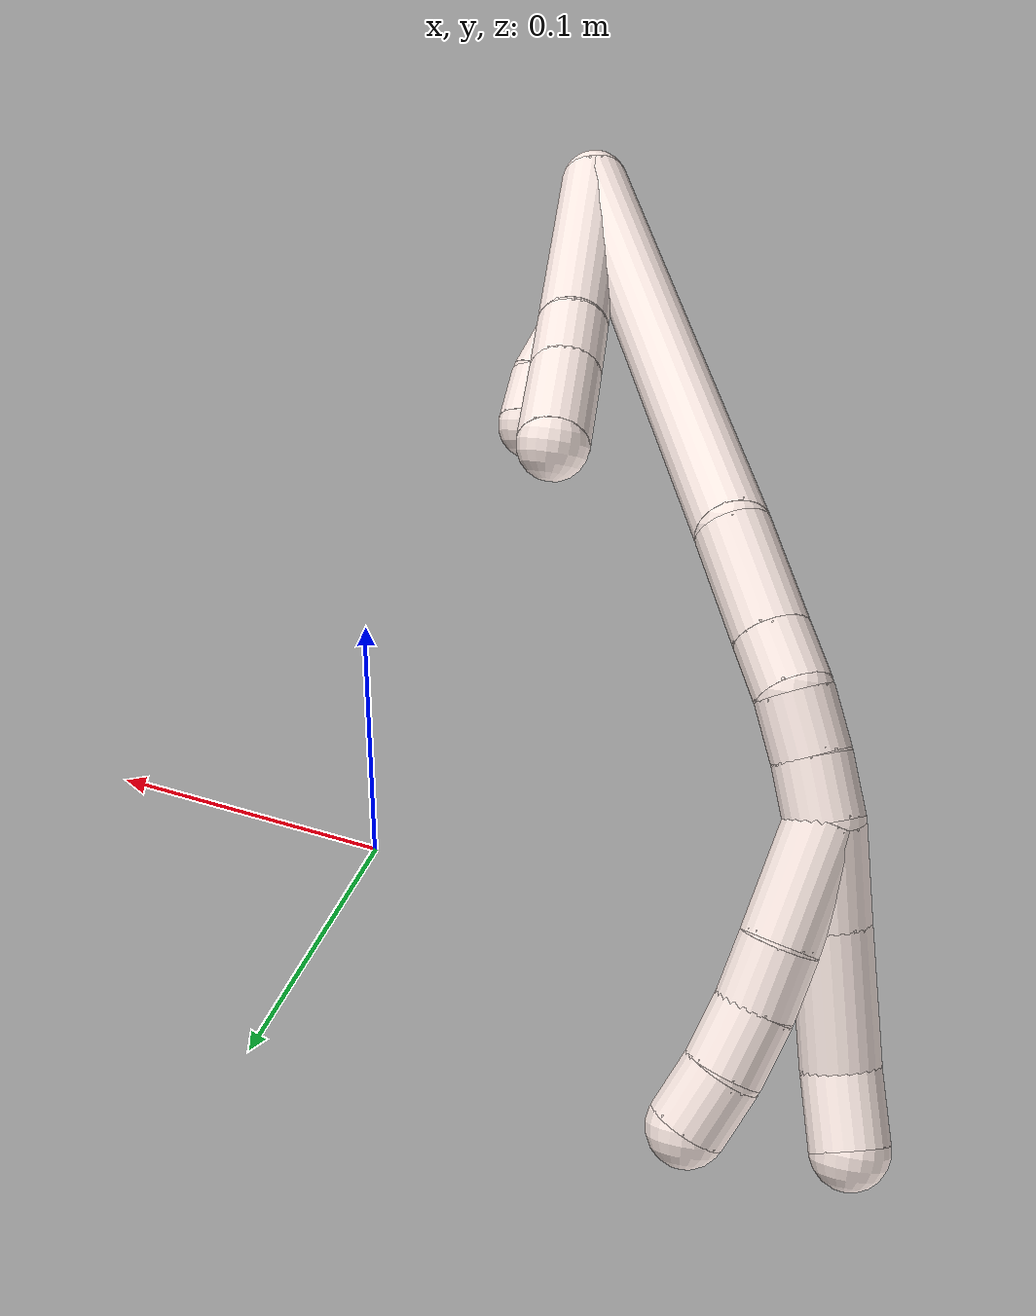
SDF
<sdf version="1.7">
 <world name="default">
  <model name="11">
   <static>0</static>
   <link name="11">
    <collision name="collision-cylinder-e_1_2_8">
     <pose>0.005255 0.030404 -0.032232 -2.38536 0.118054 -0.295372</pose>
     <geometry><cylinder><radius>0.0125</radius><length>0.08924</length></cylinder></geometry>
     <surface>
      <friction><ode><mu>1.16</mu><mu2>1.16</mu2><slip1>0</slip1><slip2>0</slip2></ode></friction>
      <contact><ode><kp>1e+06</kp><kd>1</kd><max_vel>0</max_vel><min_depth>0.001</min_depth></ode></contact>
     </surface>
    </collision>
    <visual name="visual-cylinder-e_1_2_8">
     <pose>0.005255 0.030404 -0.032232 -2.38536 0.118054 -0.295372</pose>
     <geometry><cylinder><radius>0.0125</radius><length>0.08924</length></cylinder></geometry>
     <material><ambient>1 0.933333 0.909804 1</ambient></material>
    </visual>
    <collision name="collision-cylinder-e_2_8_9">
     <pose>0.011855 0.068455 -0.074025 -2.46702 0.109336 -0.309591</pose>
     <geometry><cylinder><radius>0.0125</radius><length>0.024632</length></cylinder></geometry>
     <surface>
      <friction><ode><mu>1.16</mu><mu2>1.16</mu2><slip1>0</slip1><slip2>0</slip2></ode></friction>
      <contact><ode><kp>1e+06</kp><kd>1</kd><max_vel>0</max_vel><min_depth>0.001</min_depth></ode></contact>
     </surface>
    </collision>
    <visual name="visual-cylinder-e_2_8_9">
     <pose>0.011855 0.068455 -0.074025 -2.46702 0.109336 -0.309591</pose>
     <geometry><cylinder><radius>0.0125</radius><length>0.024632</length></cylinder></geometry>
     <material><ambient>1 0.933333 0.909804 1</ambient></material>
    </visual>
    <collision name="collision-cylinder-e_3_9_6">
     <pose>0.015394 0.087727 -0.097237 -2.43616 0.12183 -0.328386</pose>
     <geometry><cylinder><radius>0.0125</radius><length>0.036128</length></cylinder></geometry>
     <surface>
      <friction><ode><mu>1.16</mu><mu2>1.16</mu2><slip1>0</slip1><slip2>0</slip2></ode></friction>
      <contact><ode><kp>1e+06</kp><kd>1</kd><max_vel>0</max_vel><min_depth>0.001</min_depth></ode></contact>
     </surface>
    </collision>
    <visual name="visual-cylinder-e_3_9_6">
     <pose>0.015394 0.087727 -0.097237 -2.43616 0.12183 -0.328386</pose>
     <geometry><cylinder><radius>0.0125</radius><length>0.036128</length></cylinder></geometry>
     <material><ambient>1 0.933333 0.909804 1</ambient></material>
    </visual>
    <collision name="collision-cylinder-e_1_2_10">
     <pose>-0.000365 0.000682 -0.00997 -3.07332 -0.036523 0.982193</pose>
     <geometry><cylinder><radius>0.0125</radius><length>0.02</length></cylinder></geometry>
     <surface>
      <friction><ode><mu>1.16</mu><mu2>1.16</mu2><slip1>0</slip1><slip2>0</slip2></ode></friction>
      <contact><ode><kp>1e+06</kp><kd>1</kd><max_vel>0</max_vel><min_depth>0.001</min_depth></ode></contact>
     </surface>
    </collision>
    <visual name="visual-cylinder-e_1_2_10">
     <pose>-0.000365 0.000682 -0.00997 -3.07332 -0.036523 0.982193</pose>
     <geometry><cylinder><radius>0.0125</radius><length>0.02</length></cylinder></geometry>
     <material><ambient>1 0.933333 0.909804 1</ambient></material>
    </visual>
    <collision name="collision-cylinder-e_2_10_11">
     <pose>-7e-06 0.000766 -0.029896 3.08161 0.072433 1.75837</pose>
     <geometry><cylinder><radius>0.0125</radius><length>0.02</length></cylinder></geometry>
     <surface>
      <friction><ode><mu>1.16</mu><mu2>1.16</mu2><slip1>0</slip1><slip2>0</slip2></ode></friction>
      <contact><ode><kp>1e+06</kp><kd>1</kd><max_vel>0</max_vel><min_depth>0.001</min_depth></ode></contact>
     </surface>
    </collision>
    <visual name="visual-cylinder-e_2_10_11">
     <pose>-7e-06 0.000766 -0.029896 3.08161 0.072433 1.75837</pose>
     <geometry><cylinder><radius>0.0125</radius><length>0.02</length></cylinder></geometry>
     <material><ambient>1 0.933333 0.909804 1</ambient></material>
    </visual>
    <collision name="collision-cylinder-e_3_11_12">
     <pose>0.001305 0.002179 -0.04963 -2.93877 0.05887 -0.563289</pose>
     <geometry><cylinder><radius>0.0125</radius><length>0.02</length></cylinder></geometry>
     <surface>
      <friction><ode><mu>1.16</mu><mu2>1.16</mu2><slip1>0</slip1><slip2>0</slip2></ode></friction>
      <contact><ode><kp>1e+06</kp><kd>1</kd><max_vel>0</max_vel><min_depth>0.001</min_depth></ode></contact>
     </surface>
    </collision>
    <visual name="visual-cylinder-e_3_11_12">
     <pose>0.001305 0.002179 -0.04963 -2.93877 0.05887 -0.563289</pose>
     <geometry><cylinder><radius>0.0125</radius><length>0.02</length></cylinder></geometry>
     <material><ambient>1 0.933333 0.909804 1</ambient></material>
    </visual>
    <collision name="collision-cylinder-e_4_12_13">
     <pose>0.00563 0.005742 -0.068553 -2.97344 0.382929 -2.32136</pose>
     <geometry><cylinder><radius>0.0125</radius><length>0.02</length></cylinder></geometry>
     <surface>
      <friction><ode><mu>1.16</mu><mu2>1.16</mu2><slip1>0</slip1><slip2>0</slip2></ode></friction>
      <contact><ode><kp>1e+06</kp><kd>1</kd><max_vel>0</max_vel><min_depth>0.001</min_depth></ode></contact>
     </surface>
    </collision>
    <visual name="visual-cylinder-e_4_12_13">
     <pose>0.00563 0.005742 -0.068553 -2.97344 0.382929 -2.32136</pose>
     <geometry><cylinder><radius>0.0125</radius><length>0.02</length></cylinder></geometry>
     <material><ambient>1 0.933333 0.909804 1</ambient></material>
    </visual>
    <collision name="collision-cylinder-e_5_13_5">
     <pose>0.010905 0.010542 -0.08703 -2.80673 0.154406 -0.858455</pose>
     <geometry><cylinder><radius>0.0125</radius><length>0.02</length></cylinder></geometry>
     <surface>
      <friction><ode><mu>1.16</mu><mu2>1.16</mu2><slip1>0</slip1><slip2>0</slip2></ode></friction>
      <contact><ode><kp>1e+06</kp><kd>1</kd><max_vel>0</max_vel><min_depth>0.001</min_depth></ode></contact>
     </surface>
    </collision>
    <visual name="visual-cylinder-e_5_13_5">
     <pose>0.010905 0.010542 -0.08703 -2.80673 0.154406 -0.858455</pose>
     <geometry><cylinder><radius>0.0125</radius><length>0.02</length></cylinder></geometry>
     <material><ambient>1 0.933333 0.909804 1</ambient></material>
    </visual>
    <collision name="collision-cylinder-e_1_2_14">
     <pose>-0.017585 0.07322 -0.066636 -2.30915 -0.175785 0.393532</pose>
     <geometry><cylinder><radius>0.0125</radius><length>0.201105</length></cylinder></geometry>
     <surface>
      <friction><ode><mu>1.16</mu><mu2>1.16</mu2><slip1>0</slip1><slip2>0</slip2></ode></friction>
      <contact><ode><kp>1e+06</kp><kd>1</kd><max_vel>0</max_vel><min_depth>0.001</min_depth></ode></contact>
     </surface>
    </collision>
    <visual name="visual-cylinder-e_1_2_14">
     <pose>-0.017585 0.07322 -0.066636 -2.30915 -0.175785 0.393532</pose>
     <geometry><cylinder><radius>0.0125</radius><length>0.201105</length></cylinder></geometry>
     <material><ambient>1 0.933333 0.909804 1</ambient></material>
    </visual>
    <collision name="collision-cylinder-e_2_14_15">
     <pose>-0.041223 0.155933 -0.14899 -2.59827 -0.31845 1.04592</pose>
     <geometry><cylinder><radius>0.0125</radius><length>0.038667</length></cylinder></geometry>
     <surface>
      <friction><ode><mu>1.16</mu><mu2>1.16</mu2><slip1>0</slip1><slip2>0</slip2></ode></friction>
      <contact><ode><kp>1e+06</kp><kd>1</kd><max_vel>0</max_vel><min_depth>0.001</min_depth></ode></contact>
     </surface>
    </collision>
    <visual name="visual-cylinder-e_2_14_15">
     <pose>-0.041223 0.155933 -0.14899 -2.59827 -0.31845 1.04592</pose>
     <geometry><cylinder><radius>0.0125</radius><length>0.038667</length></cylinder></geometry>
     <material><ambient>1 0.933333 0.909804 1</ambient></material>
    </visual>
    <collision name="collision-cylinder-e_3_15_16">
     <pose>-0.050516 0.170321 -0.172859 -2.60083 -0.328392 1.07759</pose>
     <geometry><cylinder><radius>0.0125</radius><length>0.020092</length></cylinder></geometry>
     <surface>
      <friction><ode><mu>1.16</mu><mu2>1.16</mu2><slip1>0</slip1><slip2>0</slip2></ode></friction>
      <contact><ode><kp>1e+06</kp><kd>1</kd><max_vel>0</max_vel><min_depth>0.001</min_depth></ode></contact>
     </surface>
    </collision>
    <visual name="visual-cylinder-e_3_15_16">
     <pose>-0.050516 0.170321 -0.172859 -2.60083 -0.328392 1.07759</pose>
     <geometry><cylinder><radius>0.0125</radius><length>0.020092</length></cylinder></geometry>
     <material><ambient>1 0.933333 0.909804 1</ambient></material>
    </visual>
    <collision name="collision-cylinder-e_4_16_17">
     <pose>-0.057408 0.176872 -0.190201 -2.96331 -0.372846 2.25655</pose>
     <geometry><cylinder><radius>0.0125</radius><length>0.020053</length></cylinder></geometry>
     <surface>
      <friction><ode><mu>1.16</mu><mu2>1.16</mu2><slip1>0</slip1><slip2>0</slip2></ode></friction>
      <contact><ode><kp>1e+06</kp><kd>1</kd><max_vel>0</max_vel><min_depth>0.001</min_depth></ode></contact>
     </surface>
    </collision>
    <visual name="visual-cylinder-e_4_16_17">
     <pose>-0.057408 0.176872 -0.190201 -2.96331 -0.372846 2.25655</pose>
     <geometry><cylinder><radius>0.0125</radius><length>0.020053</length></cylinder></geometry>
     <material><ambient>1 0.933333 0.909804 1</ambient></material>
    </visual>
    <collision name="collision-cylinder-e_5_17_1">
     <pose>-0.064125 0.179956 -0.208846 -2.99162 -0.310117 2.24552</pose>
     <geometry><cylinder><radius>0.0125</radius><length>0.020084</length></cylinder></geometry>
     <surface>
      <friction><ode><mu>1.16</mu><mu2>1.16</mu2><slip1>0</slip1><slip2>0</slip2></ode></friction>
      <contact><ode><kp>1e+06</kp><kd>1</kd><max_vel>0</max_vel><min_depth>0.001</min_depth></ode></contact>
     </surface>
    </collision>
    <visual name="visual-cylinder-e_5_17_1">
     <pose>-0.064125 0.179956 -0.208846 -2.99162 -0.310117 2.24552</pose>
     <geometry><cylinder><radius>0.0125</radius><length>0.020084</length></cylinder></geometry>
     <material><ambient>1 0.933333 0.909804 1</ambient></material>
    </visual>
    <collision name="collision-cylinder-e_1_1_18">
     <pose>-0.070959 0.179462 -0.233244 3.01356 -0.245176 -2.18211</pose>
     <geometry><cylinder><radius>0.0125</radius><length>0.031061</length></cylinder></geometry>
     <surface>
      <friction><ode><mu>1.16</mu><mu2>1.16</mu2><slip1>0</slip1><slip2>0</slip2></ode></friction>
      <contact><ode><kp>1e+06</kp><kd>1</kd><max_vel>0</max_vel><min_depth>0.001</min_depth></ode></contact>
     </surface>
    </collision>
    <visual name="visual-cylinder-e_1_1_18">
     <pose>-0.070959 0.179462 -0.233244 3.01356 -0.245176 -2.18211</pose>
     <geometry><cylinder><radius>0.0125</radius><length>0.031061</length></cylinder></geometry>
     <material><ambient>1 0.933333 0.909804 1</ambient></material>
    </visual>
    <collision name="collision-cylinder-e_2_18_19">
     <pose>-0.080187 0.175511 -0.269816 3.04814 -0.246175 -2.41882</pose>
     <geometry><cylinder><radius>0.0125</radius><length>0.044799</length></cylinder></geometry>
     <surface>
      <friction><ode><mu>1.16</mu><mu2>1.16</mu2><slip1>0</slip1><slip2>0</slip2></ode></friction>
      <contact><ode><kp>1e+06</kp><kd>1</kd><max_vel>0</max_vel><min_depth>0.001</min_depth></ode></contact>
     </surface>
    </collision>
    <visual name="visual-cylinder-e_2_18_19">
     <pose>-0.080187 0.175511 -0.269816 3.04814 -0.246175 -2.41882</pose>
     <geometry><cylinder><radius>0.0125</radius><length>0.044799</length></cylinder></geometry>
     <material><ambient>1 0.933333 0.909804 1</ambient></material>
    </visual>
    <collision name="collision-cylinder-e_3_19_4">
     <pose>-0.087931 0.176235 -0.302974 -2.90731 -0.190422 1.36343</pose>
     <geometry><cylinder><radius>0.0125</radius><length>0.02414</length></cylinder></geometry>
     <surface>
      <friction><ode><mu>1.16</mu><mu2>1.16</mu2><slip1>0</slip1><slip2>0</slip2></ode></friction>
      <contact><ode><kp>1e+06</kp><kd>1</kd><max_vel>0</max_vel><min_depth>0.001</min_depth></ode></contact>
     </surface>
    </collision>
    <visual name="visual-cylinder-e_3_19_4">
     <pose>-0.087931 0.176235 -0.302974 -2.90731 -0.190422 1.36343</pose>
     <geometry><cylinder><radius>0.0125</radius><length>0.02414</length></cylinder></geometry>
     <material><ambient>1 0.933333 0.909804 1</ambient></material>
    </visual>
    <collision name="collision-cylinder-e_1_1_20">
     <pose>-0.062728 0.181933 -0.236928 -3.11217 0.234979 -2.89353</pose>
     <geometry><cylinder><radius>0.0125</radius><length>0.038322</length></cylinder></geometry>
     <surface>
      <friction><ode><mu>1.16</mu><mu2>1.16</mu2><slip1>0</slip1><slip2>0</slip2></ode></friction>
      <contact><ode><kp>1e+06</kp><kd>1</kd><max_vel>0</max_vel><min_depth>0.001</min_depth></ode></contact>
     </surface>
    </collision>
    <visual name="visual-cylinder-e_1_1_20">
     <pose>-0.062728 0.181933 -0.236928 -3.11217 0.234979 -2.89353</pose>
     <geometry><cylinder><radius>0.0125</radius><length>0.038322</length></cylinder></geometry>
     <material><ambient>1 0.933333 0.909804 1</ambient></material>
    </visual>
    <collision name="collision-cylinder-e_2_20_21">
     <pose>-0.056075 0.181763 -0.2656 3.07019 0.214314 2.50041</pose>
     <geometry><cylinder><radius>0.0125</radius><length>0.020615</length></cylinder></geometry>
     <surface>
      <friction><ode><mu>1.16</mu><mu2>1.16</mu2><slip1>0</slip1><slip2>0</slip2></ode></friction>
      <contact><ode><kp>1e+06</kp><kd>1</kd><max_vel>0</max_vel><min_depth>0.001</min_depth></ode></contact>
     </surface>
    </collision>
    <visual name="visual-cylinder-e_2_20_21">
     <pose>-0.056075 0.181763 -0.2656 3.07019 0.214314 2.50041</pose>
     <geometry><cylinder><radius>0.0125</radius><length>0.020615</length></cylinder></geometry>
     <material><ambient>1 0.933333 0.909804 1</ambient></material>
    </visual>
    <collision name="collision-cylinder-e_3_21_22">
     <pose>-0.050616 0.18053 -0.285637 3.09009 0.315611 2.82067</pose>
     <geometry><cylinder><radius>0.0125</radius><length>0.021047</length></cylinder></geometry>
     <surface>
      <friction><ode><mu>1.16</mu><mu2>1.16</mu2><slip1>0</slip1><slip2>0</slip2></ode></friction>
      <contact><ode><kp>1e+06</kp><kd>1</kd><max_vel>0</max_vel><min_depth>0.001</min_depth></ode></contact>
     </surface>
    </collision>
    <visual name="visual-cylinder-e_3_21_22">
     <pose>-0.050616 0.18053 -0.285637 3.09009 0.315611 2.82067</pose>
     <geometry><cylinder><radius>0.0125</radius><length>0.021047</length></cylinder></geometry>
     <material><ambient>1 0.933333 0.909804 1</ambient></material>
    </visual>
    <collision name="collision-cylinder-e_4_22_3">
     <pose>-0.043591 0.178255 -0.304734 2.95073 0.385084 2.22875</pose>
     <geometry><cylinder><radius>0.0125</radius><length>0.020016</length></cylinder></geometry>
     <surface>
      <friction><ode><mu>1.16</mu><mu2>1.16</mu2><slip1>0</slip1><slip2>0</slip2></ode></friction>
      <contact><ode><kp>1e+06</kp><kd>1</kd><max_vel>0</max_vel><min_depth>0.001</min_depth></ode></contact>
     </surface>
    </collision>
    <visual name="visual-cylinder-e_4_22_3">
     <pose>-0.043591 0.178255 -0.304734 2.95073 0.385084 2.22875</pose>
     <geometry><cylinder><radius>0.0125</radius><length>0.020016</length></cylinder></geometry>
     <material><ambient>1 0.933333 0.909804 1</ambient></material>
    </visual>
    <collision name="collision-sphere-3">
     <pose>-0.039831 0.176496 -0.31384 0 -0 0</pose>
     <geometry><sphere><radius>0.0125</radius></sphere></geometry>
     <surface>
      <friction><ode><mu>1.16</mu><mu2>1.16</mu2><slip1>0</slip1><slip2>0</slip2></ode></friction>
      <contact><ode><kp>1e+06</kp><kd>1</kd><max_vel>0</max_vel><min_depth>0.001</min_depth></ode></contact>
     </surface>
    </collision>
    <visual name="visual-sphere-3">
     <pose>-0.039831 0.176496 -0.31384 0 -0 0</pose>
     <geometry><sphere><radius>0.0125</radius></sphere></geometry>
     <material><ambient>1 0.933333 0.909804 1</ambient></material>
    </visual>
    <collision name="collision-sphere-22">
     <pose>-0.04735 0.180015 -0.295627 0 -0 0</pose>
     <geometry><sphere><radius>0.0125</radius></sphere></geometry>
     <surface>
      <friction><ode><mu>1.16</mu><mu2>1.16</mu2><slip1>0</slip1><slip2>0</slip2></ode></friction>
      <contact><ode><kp>1e+06</kp><kd>1</kd><max_vel>0</max_vel><min_depth>0.001</min_depth></ode></contact>
     </surface>
    </collision>
    <visual name="visual-sphere-22">
     <pose>-0.04735 0.180015 -0.295627 0 -0 0</pose>
     <geometry><sphere><radius>0.0125</radius></sphere></geometry>
     <material><ambient>1 0.933333 0.909804 1</ambient></material>
    </visual>
    <collision name="collision-sphere-21">
     <pose>-0.053883 0.181045 -0.275646 0 -0 0</pose>
     <geometry><sphere><radius>0.0125</radius></sphere></geometry>
     <surface>
      <friction><ode><mu>1.16</mu><mu2>1.16</mu2><slip1>0</slip1><slip2>0</slip2></ode></friction>
      <contact><ode><kp>1e+06</kp><kd>1</kd><max_vel>0</max_vel><min_depth>0.001</min_depth></ode></contact>
     </surface>
    </collision>
    <visual name="visual-sphere-21">
     <pose>-0.053883 0.181045 -0.275646 0 -0 0</pose>
     <geometry><sphere><radius>0.0125</radius></sphere></geometry>
     <material><ambient>1 0.933333 0.909804 1</ambient></material>
    </visual>
    <collision name="collision-sphere-20">
     <pose>-0.058267 0.182482 -0.255554 0 -0 0</pose>
     <geometry><sphere><radius>0.0125</radius></sphere></geometry>
     <surface>
      <friction><ode><mu>1.16</mu><mu2>1.16</mu2><slip1>0</slip1><slip2>0</slip2></ode></friction>
      <contact><ode><kp>1e+06</kp><kd>1</kd><max_vel>0</max_vel><min_depth>0.001</min_depth></ode></contact>
     </surface>
    </collision>
    <visual name="visual-sphere-20">
     <pose>-0.058267 0.182482 -0.255554 0 -0 0</pose>
     <geometry><sphere><radius>0.0125</radius></sphere></geometry>
     <material><ambient>1 0.933333 0.909804 1</ambient></material>
    </visual>
    <collision name="collision-sphere-4">
     <pose>-0.090215 0.178986 -0.314502 0 -0 0</pose>
     <geometry><sphere><radius>0.0125</radius></sphere></geometry>
     <surface>
      <friction><ode><mu>1.16</mu><mu2>1.16</mu2><slip1>0</slip1><slip2>0</slip2></ode></friction>
      <contact><ode><kp>1e+06</kp><kd>1</kd><max_vel>0</max_vel><min_depth>0.001</min_depth></ode></contact>
     </surface>
    </collision>
    <visual name="visual-sphere-4">
     <pose>-0.090215 0.178986 -0.314502 0 -0 0</pose>
     <geometry><sphere><radius>0.0125</radius></sphere></geometry>
     <material><ambient>1 0.933333 0.909804 1</ambient></material>
    </visual>
    <collision name="collision-sphere-11">
     <pose>0.000717 0.000168 -0.039852 0 -0 0</pose>
     <geometry><sphere><radius>0.0125</radius></sphere></geometry>
     <surface>
      <friction><ode><mu>1.16</mu><mu2>1.16</mu2><slip1>0</slip1><slip2>0</slip2></ode></friction>
      <contact><ode><kp>1e+06</kp><kd>1</kd><max_vel>0</max_vel><min_depth>0.001</min_depth></ode></contact>
     </surface>
    </collision>
    <visual name="visual-sphere-11">
     <pose>0.000717 0.000168 -0.039852 0 -0 0</pose>
     <geometry><sphere><radius>0.0125</radius></sphere></geometry>
     <material><ambient>1 0.933333 0.909804 1</ambient></material>
    </visual>
    <collision name="collision-sphere-10">
     <pose>-0.00073 0.001364 -0.01994 0 -0 0</pose>
     <geometry><sphere><radius>0.0125</radius></sphere></geometry>
     <surface>
      <friction><ode><mu>1.16</mu><mu2>1.16</mu2><slip1>0</slip1><slip2>0</slip2></ode></friction>
      <contact><ode><kp>1e+06</kp><kd>1</kd><max_vel>0</max_vel><min_depth>0.001</min_depth></ode></contact>
     </surface>
    </collision>
    <visual name="visual-sphere-10">
     <pose>-0.00073 0.001364 -0.01994 0 -0 0</pose>
     <geometry><sphere><radius>0.0125</radius></sphere></geometry>
     <material><ambient>1 0.933333 0.909804 1</ambient></material>
    </visual>
    <collision name="collision-sphere-6">
     <pose>0.017589 0.099352 -0.110887 0 -0 0</pose>
     <geometry><sphere><radius>0.0125</radius></sphere></geometry>
     <surface>
      <friction><ode><mu>1.16</mu><mu2>1.16</mu2><slip1>0</slip1><slip2>0</slip2></ode></friction>
      <contact><ode><kp>1e+06</kp><kd>1</kd><max_vel>0</max_vel><min_depth>0.001</min_depth></ode></contact>
     </surface>
    </collision>
    <visual name="visual-sphere-6">
     <pose>0.017589 0.099352 -0.110887 0 -0 0</pose>
     <geometry><sphere><radius>0.0125</radius></sphere></geometry>
     <material><ambient>1 0.933333 0.909804 1</ambient></material>
    </visual>
    <collision name="collision-sphere-9">
     <pose>0.013199 0.076102 -0.083586 0 -0 0</pose>
     <geometry><sphere><radius>0.0125</radius></sphere></geometry>
     <surface>
      <friction><ode><mu>1.16</mu><mu2>1.16</mu2><slip1>0</slip1><slip2>0</slip2></ode></friction>
      <contact><ode><kp>1e+06</kp><kd>1</kd><max_vel>0</max_vel><min_depth>0.001</min_depth></ode></contact>
     </surface>
    </collision>
    <visual name="visual-sphere-9">
     <pose>0.013199 0.076102 -0.083586 0 -0 0</pose>
     <geometry><sphere><radius>0.0125</radius></sphere></geometry>
     <material><ambient>1 0.933333 0.909804 1</ambient></material>
    </visual>
    <collision name="collision-sphere-2">
     <geometry><sphere><radius>0.0125</radius></sphere></geometry>
     <surface>
      <friction><ode><mu>1.16</mu><mu2>1.16</mu2><slip1>0</slip1><slip2>0</slip2></ode></friction>
      <contact><ode><kp>1e+06</kp><kd>1</kd><max_vel>0</max_vel><min_depth>0.001</min_depth></ode></contact>
     </surface>
    </collision>
    <visual name="visual-sphere-2">
     <geometry><sphere><radius>0.0125</radius></sphere></geometry>
     <material><ambient>1 0.933333 0.909804 1</ambient></material>
    </visual>
    <collision name="collision-sphere-19">
     <pose>-0.085646 0.173483 -0.291445 0 -0 0</pose>
     <geometry><sphere><radius>0.0125</radius></sphere></geometry>
     <surface>
      <friction><ode><mu>1.16</mu><mu2>1.16</mu2><slip1>0</slip1><slip2>0</slip2></ode></friction>
      <contact><ode><kp>1e+06</kp><kd>1</kd><max_vel>0</max_vel><min_depth>0.001</min_depth></ode></contact>
     </surface>
    </collision>
    <visual name="visual-sphere-19">
     <pose>-0.085646 0.173483 -0.291445 0 -0 0</pose>
     <geometry><sphere><radius>0.0125</radius></sphere></geometry>
     <material><ambient>1 0.933333 0.909804 1</ambient></material>
    </visual>
    <collision name="collision-sphere-8">
     <pose>0.010511 0.060809 -0.064464 0 -0 0</pose>
     <geometry><sphere><radius>0.0125</radius></sphere></geometry>
     <surface>
      <friction><ode><mu>1.16</mu><mu2>1.16</mu2><slip1>0</slip1><slip2>0</slip2></ode></friction>
      <contact><ode><kp>1e+06</kp><kd>1</kd><max_vel>0</max_vel><min_depth>0.001</min_depth></ode></contact>
     </surface>
    </collision>
    <visual name="visual-sphere-8">
     <pose>0.010511 0.060809 -0.064464 0 -0 0</pose>
     <geometry><sphere><radius>0.0125</radius></sphere></geometry>
     <material><ambient>1 0.933333 0.909804 1</ambient></material>
    </visual>
    <collision name="collision-sphere-12">
     <pose>0.001894 0.004189 -0.059408 0 -0 0</pose>
     <geometry><sphere><radius>0.0125</radius></sphere></geometry>
     <surface>
      <friction><ode><mu>1.16</mu><mu2>1.16</mu2><slip1>0</slip1><slip2>0</slip2></ode></friction>
      <contact><ode><kp>1e+06</kp><kd>1</kd><max_vel>0</max_vel><min_depth>0.001</min_depth></ode></contact>
     </surface>
    </collision>
    <visual name="visual-sphere-12">
     <pose>0.001894 0.004189 -0.059408 0 -0 0</pose>
     <geometry><sphere><radius>0.0125</radius></sphere></geometry>
     <material><ambient>1 0.933333 0.909804 1</ambient></material>
    </visual>
    <collision name="collision-sphere-13">
     <pose>0.009367 0.007294 -0.077698 0 -0 0</pose>
     <geometry><sphere><radius>0.0125</radius></sphere></geometry>
     <surface>
      <friction><ode><mu>1.16</mu><mu2>1.16</mu2><slip1>0</slip1><slip2>0</slip2></ode></friction>
      <contact><ode><kp>1e+06</kp><kd>1</kd><max_vel>0</max_vel><min_depth>0.001</min_depth></ode></contact>
     </surface>
    </collision>
    <visual name="visual-sphere-13">
     <pose>0.009367 0.007294 -0.077698 0 -0 0</pose>
     <geometry><sphere><radius>0.0125</radius></sphere></geometry>
     <material><ambient>1 0.933333 0.909804 1</ambient></material>
    </visual>
    <collision name="collision-sphere-5">
     <pose>0.012442 0.013789 -0.096362 0 -0 0</pose>
     <geometry><sphere><radius>0.0125</radius></sphere></geometry>
     <surface>
      <friction><ode><mu>1.16</mu><mu2>1.16</mu2><slip1>0</slip1><slip2>0</slip2></ode></friction>
      <contact><ode><kp>1e+06</kp><kd>1</kd><max_vel>0</max_vel><min_depth>0.001</min_depth></ode></contact>
     </surface>
    </collision>
    <visual name="visual-sphere-5">
     <pose>0.012442 0.013789 -0.096362 0 -0 0</pose>
     <geometry><sphere><radius>0.0125</radius></sphere></geometry>
     <material><ambient>1 0.933333 0.909804 1</ambient></material>
    </visual>
    <collision name="collision-sphere-14">
     <pose>-0.03517 0.14644 -0.133272 0 -0 0</pose>
     <geometry><sphere><radius>0.0125</radius></sphere></geometry>
     <surface>
      <friction><ode><mu>1.16</mu><mu2>1.16</mu2><slip1>0</slip1><slip2>0</slip2></ode></friction>
      <contact><ode><kp>1e+06</kp><kd>1</kd><max_vel>0</max_vel><min_depth>0.001</min_depth></ode></contact>
     </surface>
    </collision>
    <visual name="visual-sphere-14">
     <pose>-0.03517 0.14644 -0.133272 0 -0 0</pose>
     <geometry><sphere><radius>0.0125</radius></sphere></geometry>
     <material><ambient>1 0.933333 0.909804 1</ambient></material>
    </visual>
    <collision name="collision-sphere-15">
     <pose>-0.047276 0.165425 -0.164707 0 -0 0</pose>
     <geometry><sphere><radius>0.0125</radius></sphere></geometry>
     <surface>
      <friction><ode><mu>1.16</mu><mu2>1.16</mu2><slip1>0</slip1><slip2>0</slip2></ode></friction>
      <contact><ode><kp>1e+06</kp><kd>1</kd><max_vel>0</max_vel><min_depth>0.001</min_depth></ode></contact>
     </surface>
    </collision>
    <visual name="visual-sphere-15">
     <pose>-0.047276 0.165425 -0.164707 0 -0 0</pose>
     <geometry><sphere><radius>0.0125</radius></sphere></geometry>
     <material><ambient>1 0.933333 0.909804 1</ambient></material>
    </visual>
    <collision name="collision-sphere-16">
     <pose>-0.053756 0.175216 -0.181012 0 -0 0</pose>
     <geometry><sphere><radius>0.0125</radius></sphere></geometry>
     <surface>
      <friction><ode><mu>1.16</mu><mu2>1.16</mu2><slip1>0</slip1><slip2>0</slip2></ode></friction>
      <contact><ode><kp>1e+06</kp><kd>1</kd><max_vel>0</max_vel><min_depth>0.001</min_depth></ode></contact>
     </surface>
    </collision>
    <visual name="visual-sphere-16">
     <pose>-0.053756 0.175216 -0.181012 0 -0 0</pose>
     <geometry><sphere><radius>0.0125</radius></sphere></geometry>
     <material><ambient>1 0.933333 0.909804 1</ambient></material>
    </visual>
    <collision name="collision-sphere-17">
     <pose>-0.061061 0.178528 -0.199391 0 -0 0</pose>
     <geometry><sphere><radius>0.0125</radius></sphere></geometry>
     <surface>
      <friction><ode><mu>1.16</mu><mu2>1.16</mu2><slip1>0</slip1><slip2>0</slip2></ode></friction>
      <contact><ode><kp>1e+06</kp><kd>1</kd><max_vel>0</max_vel><min_depth>0.001</min_depth></ode></contact>
     </surface>
    </collision>
    <visual name="visual-sphere-17">
     <pose>-0.061061 0.178528 -0.199391 0 -0 0</pose>
     <geometry><sphere><radius>0.0125</radius></sphere></geometry>
     <material><ambient>1 0.933333 0.909804 1</ambient></material>
    </visual>
    <collision name="collision-sphere-1">
     <pose>-0.067189 0.181385 -0.218301 0 -0 0</pose>
     <geometry><sphere><radius>0.0125</radius></sphere></geometry>
     <surface>
      <friction><ode><mu>1.16</mu><mu2>1.16</mu2><slip1>0</slip1><slip2>0</slip2></ode></friction>
      <contact><ode><kp>1e+06</kp><kd>1</kd><max_vel>0</max_vel><min_depth>0.001</min_depth></ode></contact>
     </surface>
    </collision>
    <visual name="visual-sphere-1">
     <pose>-0.067189 0.181385 -0.218301 0 -0 0</pose>
     <geometry><sphere><radius>0.0125</radius></sphere></geometry>
     <material><ambient>1 0.933333 0.909804 1</ambient></material>
    </visual>
    <collision name="collision-sphere-18">
     <pose>-0.074729 0.177538 -0.248187 0 -0 0</pose>
     <geometry><sphere><radius>0.0125</radius></sphere></geometry>
     <surface>
      <friction><ode><mu>1.16</mu><mu2>1.16</mu2><slip1>0</slip1><slip2>0</slip2></ode></friction>
      <contact><ode><kp>1e+06</kp><kd>1</kd><max_vel>0</max_vel><min_depth>0.001</min_depth></ode></contact>
     </surface>
    </collision>
    <visual name="visual-sphere-18">
     <pose>-0.074729 0.177538 -0.248187 0 -0 0</pose>
     <geometry><sphere><radius>0.0125</radius></sphere></geometry>
     <material><ambient>1 0.933333 0.909804 1</ambient></material>
    </visual>
    <inertial>
     <pose>-0.027113 0.10011 -0.129427 0 -0 0</pose>
     <mass>0.75</mass>
     <inertia>
      <ixx>0.000914</ixx>
      <ixy>0</ixy>
      <ixz>0</ixz>
      <iyy>-0.00016</iyy>
      <iyz>0</iyz>
      <izz>-0.000484</izz>
     </inertia>
    </inertial>
   </link>
   <pose>-0.005366 -0.20685 0.165865 0.660688 -0.207585 0.400121</pose>
  </model>
 </world>
</sdf>
